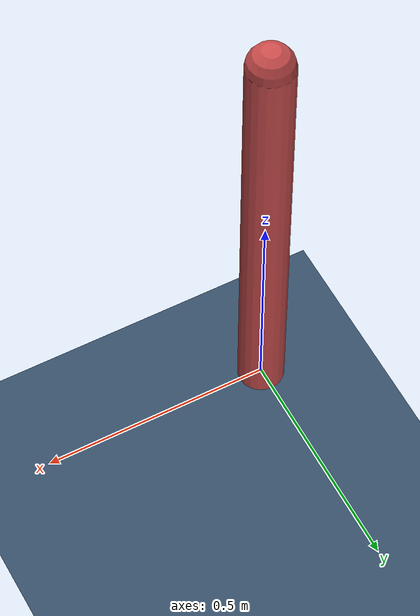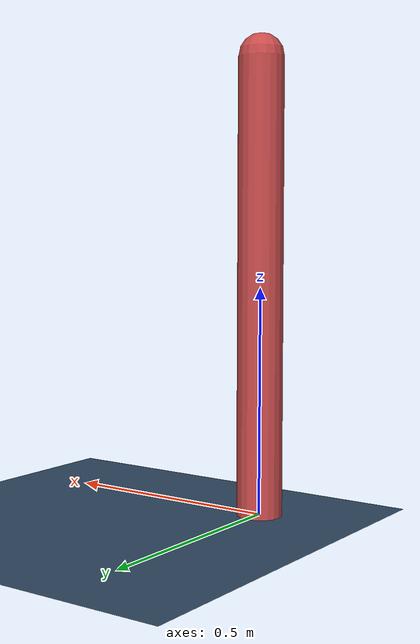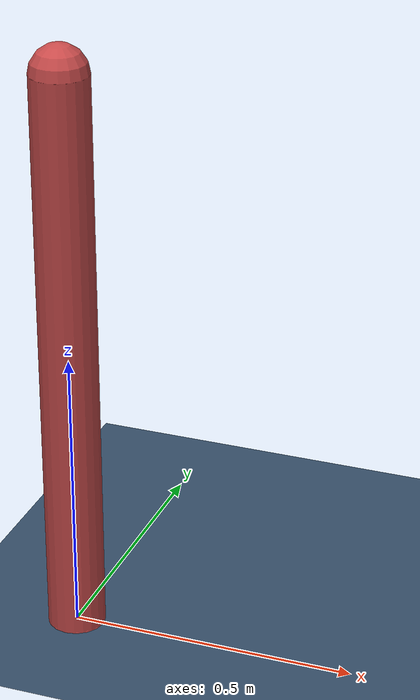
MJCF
<mujoco model="simple_pendulum">
    <compiler angle="degree" coordinate="local"/>
    <option timestep="0.002" gravity="0 0 -9.81"/>

    <default>
        <joint armature="0.01" damping="1"/>
        <geom friction="0.8 0.1 0.1" rgba="0.8 0.3 0.3 1"/>
    </default>

    <worldbody>
        <!-- Ground -->
        <geom name="floor" type="plane" pos="0 0 0" size="5 5 0.1" rgba="0.2 0.3 0.4 1"/>

        <!-- Pendulum body -->
        <body name="pendulum" pos="0 0 1">
            <joint name="hinge" type="hinge" axis="0 1 0" limited="false" damping="0.05"/>
            <geom name="rod" type="capsule" fromto="0 0 0 0 0 -1" size="0.05"/>
            <site name="tip" pos="0 0 -1"/>
        </body>
    </worldbody>

    <actuator>
        <motor joint="hinge" ctrlrange="-1 1" gear="1"/>
    </actuator>
</mujoco>
